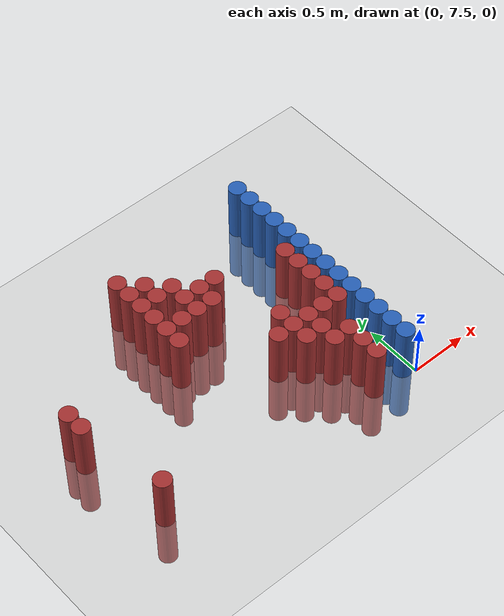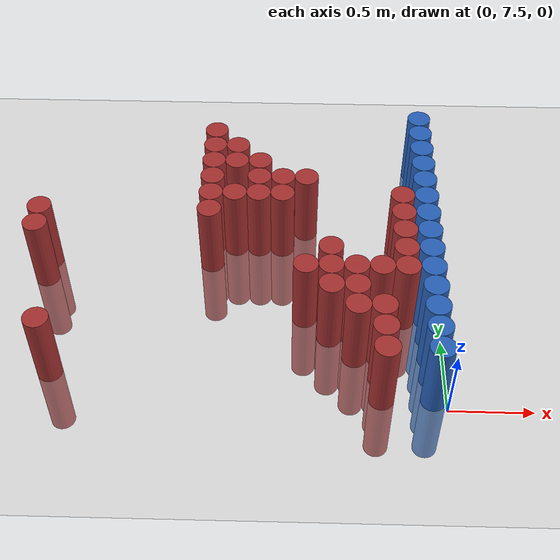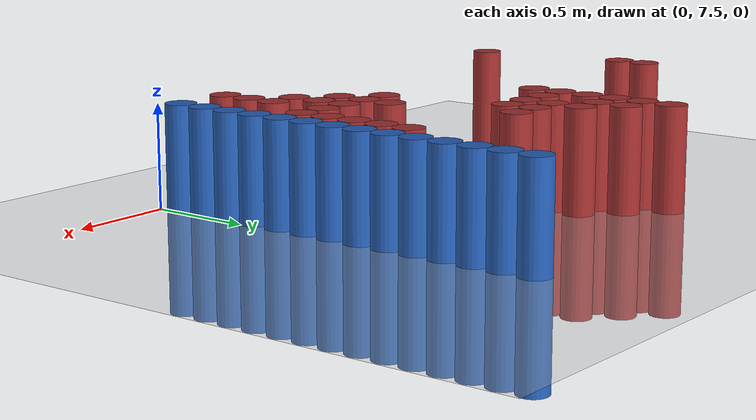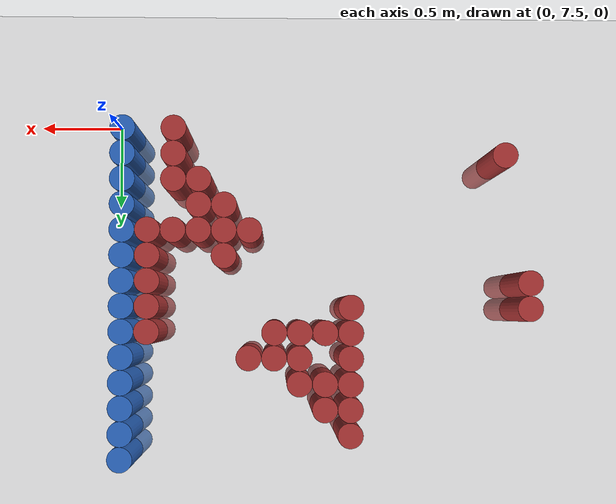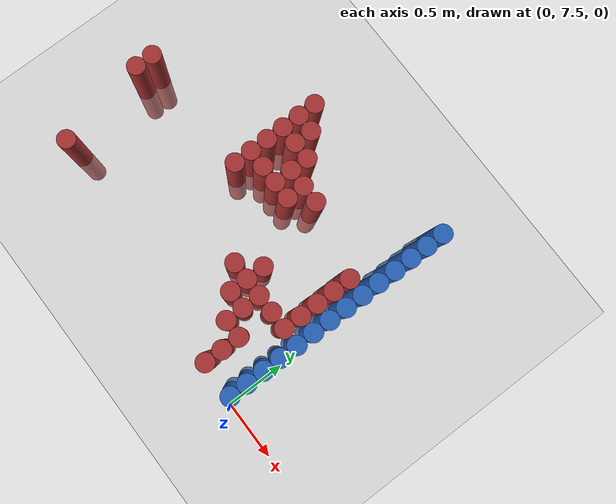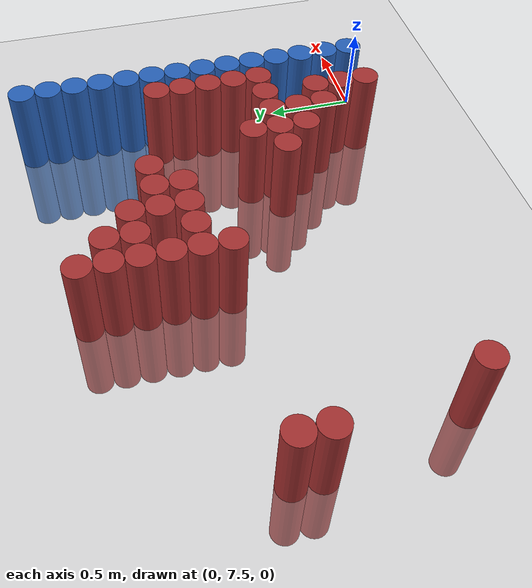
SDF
<sdf version="1.6">
 <world name="default">
  <model name="ground_plane">
   <static>1</static>
   <link name="link">
    <collision name="collision">
     <geometry><plane><normal>0 0 1</normal><size>100 100</size></plane></geometry>
     <surface><friction><ode><mu>100</mu><mu2>50</mu2></ode></friction></surface>
    </collision>
    <visual name="visual">
     <cast_shadows>0</cast_shadows>
     <geometry><plane><normal>0 0 1</normal><size>100 100</size></plane></geometry>
     <material>
      <script><uri>file://media/materials/scripts/gazebo.material</uri><name>Gazebo/Grey</name></script>
     </material>
    </visual>
   </link>
  </model>
  <model name="unit_cylinder_208">
   <static>1</static>
   <pose>-2.475000 8.475000 0.000000 0.000000 0.000000 0.000000</pose>
   <link name="link">
    <inertial>
     <mass>1</mass>
     <inertia><ixx>0.145833</ixx><ixy>0</ixy><ixz>0</ixz><iyy>0.145833</iyy><iyz>0</iyz><izz>0.125</izz></inertia>
    </inertial>
    <collision name="collision">
     <geometry><cylinder><radius>0.075000</radius><length>1</length></cylinder></geometry>
    </collision>
    <visual name="visual">
     <geometry><cylinder><radius>0.075000</radius><length>1</length></cylinder></geometry>
     <material>
      <ambient>0.648000 0.192000 0.192000 1</ambient>
      <diffuse>0.648000 0.192000 0.192000 1</diffuse>
     </material>
     <material>
      <script><name>Gazebo/Grey</name><uri>file://media/materials/scripts/gazebo.material</uri></script>
     </material>
    </visual>
   </link>
  </model>
  <model name="unit_cylinder_209">
   <static>1</static>
   <pose>-2.475000 8.625000 0.000000 0.000000 0.000000 0.000000</pose>
   <link name="link">
    <inertial>
     <mass>1</mass>
     <inertia><ixx>0.145833</ixx><ixy>0</ixy><ixz>0</ixz><iyy>0.145833</iyy><iyz>0</iyz><izz>0.125</izz></inertia>
    </inertial>
    <collision name="collision">
     <geometry><cylinder><radius>0.075000</radius><length>1</length></cylinder></geometry>
    </collision>
    <visual name="visual">
     <geometry><cylinder><radius>0.075000</radius><length>1</length></cylinder></geometry>
     <material>
      <ambient>0.648000 0.192000 0.192000 1</ambient>
      <diffuse>0.648000 0.192000 0.192000 1</diffuse>
     </material>
     <material>
      <script><name>Gazebo/Grey</name><uri>file://media/materials/scripts/gazebo.material</uri></script>
     </material>
    </visual>
   </link>
  </model>
  <model name="unit_cylinder_210">
   <static>1</static>
   <pose>-2.325000 7.725000 0.000000 0.000000 0.000000 0.000000</pose>
   <link name="link">
    <inertial>
     <mass>1</mass>
     <inertia><ixx>0.145833</ixx><ixy>0</ixy><ixz>0</ixz><iyy>0.145833</iyy><iyz>0</iyz><izz>0.125</izz></inertia>
    </inertial>
    <collision name="collision">
     <geometry><cylinder><radius>0.075000</radius><length>1</length></cylinder></geometry>
    </collision>
    <visual name="visual">
     <geometry><cylinder><radius>0.075000</radius><length>1</length></cylinder></geometry>
     <material>
      <ambient>0.648000 0.192000 0.192000 1</ambient>
      <diffuse>0.648000 0.192000 0.192000 1</diffuse>
     </material>
     <material>
      <script><name>Gazebo/Grey</name><uri>file://media/materials/scripts/gazebo.material</uri></script>
     </material>
    </visual>
   </link>
  </model>
  <model name="unit_cylinder_224">
   <static>1</static>
   <pose>-1.425000 8.625000 0.000000 0.000000 0.000000 0.000000</pose>
   <link name="link">
    <inertial>
     <mass>1</mass>
     <inertia><ixx>0.145833</ixx><ixy>0</ixy><ixz>0</ixz><iyy>0.145833</iyy><iyz>0</iyz><izz>0.125</izz></inertia>
    </inertial>
    <collision name="collision">
     <geometry><cylinder><radius>0.075000</radius><length>1</length></cylinder></geometry>
    </collision>
    <visual name="visual">
     <geometry><cylinder><radius>0.075000</radius><length>1</length></cylinder></geometry>
     <material>
      <ambient>0.648000 0.192000 0.192000 1</ambient>
      <diffuse>0.648000 0.192000 0.192000 1</diffuse>
     </material>
     <material>
      <script><name>Gazebo/Grey</name><uri>file://media/materials/scripts/gazebo.material</uri></script>
     </material>
    </visual>
   </link>
  </model>
  <model name="unit_cylinder_225">
   <static>1</static>
   <pose>-1.425000 8.775000 0.000000 0.000000 0.000000 0.000000</pose>
   <link name="link">
    <inertial>
     <mass>1</mass>
     <inertia><ixx>0.145833</ixx><ixy>0</ixy><ixz>0</ixz><iyy>0.145833</iyy><iyz>0</iyz><izz>0.125</izz></inertia>
    </inertial>
    <collision name="collision">
     <geometry><cylinder><radius>0.075000</radius><length>1</length></cylinder></geometry>
    </collision>
    <visual name="visual">
     <geometry><cylinder><radius>0.075000</radius><length>1</length></cylinder></geometry>
     <material>
      <ambient>0.648000 0.192000 0.192000 1</ambient>
      <diffuse>0.648000 0.192000 0.192000 1</diffuse>
     </material>
     <material>
      <script><name>Gazebo/Grey</name><uri>file://media/materials/scripts/gazebo.material</uri></script>
     </material>
    </visual>
   </link>
  </model>
  <model name="unit_cylinder_226">
   <static>1</static>
   <pose>-1.425000 8.925000 0.000000 0.000000 0.000000 0.000000</pose>
   <link name="link">
    <inertial>
     <mass>1</mass>
     <inertia><ixx>0.145833</ixx><ixy>0</ixy><ixz>0</ixz><iyy>0.145833</iyy><iyz>0</iyz><izz>0.125</izz></inertia>
    </inertial>
    <collision name="collision">
     <geometry><cylinder><radius>0.075000</radius><length>1</length></cylinder></geometry>
    </collision>
    <visual name="visual">
     <geometry><cylinder><radius>0.075000</radius><length>1</length></cylinder></geometry>
     <material>
      <ambient>0.648000 0.192000 0.192000 1</ambient>
      <diffuse>0.648000 0.192000 0.192000 1</diffuse>
     </material>
     <material>
      <script><name>Gazebo/Grey</name><uri>file://media/materials/scripts/gazebo.material</uri></script>
     </material>
    </visual>
   </link>
  </model>
  <model name="unit_cylinder_227">
   <static>1</static>
   <pose>-1.425000 9.075000 0.000000 0.000000 0.000000 0.000000</pose>
   <link name="link">
    <inertial>
     <mass>1</mass>
     <inertia><ixx>0.145833</ixx><ixy>0</ixy><ixz>0</ixz><iyy>0.145833</iyy><iyz>0</iyz><izz>0.125</izz></inertia>
    </inertial>
    <collision name="collision">
     <geometry><cylinder><radius>0.075000</radius><length>1</length></cylinder></geometry>
    </collision>
    <visual name="visual">
     <geometry><cylinder><radius>0.075000</radius><length>1</length></cylinder></geometry>
     <material>
      <ambient>0.648000 0.192000 0.192000 1</ambient>
      <diffuse>0.648000 0.192000 0.192000 1</diffuse>
     </material>
     <material>
      <script><name>Gazebo/Grey</name><uri>file://media/materials/scripts/gazebo.material</uri></script>
     </material>
    </visual>
   </link>
  </model>
  <model name="unit_cylinder_228">
   <static>1</static>
   <pose>-1.425000 9.225000 0.000000 0.000000 0.000000 0.000000</pose>
   <link name="link">
    <inertial>
     <mass>1</mass>
     <inertia><ixx>0.145833</ixx><ixy>0</ixy><ixz>0</ixz><iyy>0.145833</iyy><iyz>0</iyz><izz>0.125</izz></inertia>
    </inertial>
    <collision name="collision">
     <geometry><cylinder><radius>0.075000</radius><length>1</length></cylinder></geometry>
    </collision>
    <visual name="visual">
     <geometry><cylinder><radius>0.075000</radius><length>1</length></cylinder></geometry>
     <material>
      <ambient>0.648000 0.192000 0.192000 1</ambient>
      <diffuse>0.648000 0.192000 0.192000 1</diffuse>
     </material>
     <material>
      <script><name>Gazebo/Grey</name><uri>file://media/materials/scripts/gazebo.material</uri></script>
     </material>
    </visual>
   </link>
  </model>
  <model name="unit_cylinder_229">
   <static>1</static>
   <pose>-1.425000 9.375000 0.000000 0.000000 0.000000 0.000000</pose>
   <link name="link">
    <inertial>
     <mass>1</mass>
     <inertia><ixx>0.145833</ixx><ixy>0</ixy><ixz>0</ixz><iyy>0.145833</iyy><iyz>0</iyz><izz>0.125</izz></inertia>
    </inertial>
    <collision name="collision">
     <geometry><cylinder><radius>0.075000</radius><length>1</length></cylinder></geometry>
    </collision>
    <visual name="visual">
     <geometry><cylinder><radius>0.075000</radius><length>1</length></cylinder></geometry>
     <material>
      <ambient>0.648000 0.192000 0.192000 1</ambient>
      <diffuse>0.648000 0.192000 0.192000 1</diffuse>
     </material>
     <material>
      <script><name>Gazebo/Grey</name><uri>file://media/materials/scripts/gazebo.material</uri></script>
     </material>
    </visual>
   </link>
  </model>
  <model name="unit_cylinder_234">
   <static>1</static>
   <pose>-1.275000 8.775000 0.000000 0.000000 0.000000 0.000000</pose>
   <link name="link">
    <inertial>
     <mass>1</mass>
     <inertia><ixx>0.145833</ixx><ixy>0</ixy><ixz>0</ixz><iyy>0.145833</iyy><iyz>0</iyz><izz>0.125</izz></inertia>
    </inertial>
    <collision name="collision">
     <geometry><cylinder><radius>0.075000</radius><length>1</length></cylinder></geometry>
    </collision>
    <visual name="visual">
     <geometry><cylinder><radius>0.075000</radius><length>1</length></cylinder></geometry>
     <material>
      <ambient>0.648000 0.192000 0.192000 1</ambient>
      <diffuse>0.648000 0.192000 0.192000 1</diffuse>
     </material>
     <material>
      <script><name>Gazebo/Grey</name><uri>file://media/materials/scripts/gazebo.material</uri></script>
     </material>
    </visual>
   </link>
  </model>
  <model name="unit_cylinder_235">
   <static>1</static>
   <pose>-1.275000 9.075000 0.000000 0.000000 0.000000 0.000000</pose>
   <link name="link">
    <inertial>
     <mass>1</mass>
     <inertia><ixx>0.145833</ixx><ixy>0</ixy><ixz>0</ixz><iyy>0.145833</iyy><iyz>0</iyz><izz>0.125</izz></inertia>
    </inertial>
    <collision name="collision">
     <geometry><cylinder><radius>0.075000</radius><length>1</length></cylinder></geometry>
    </collision>
    <visual name="visual">
     <geometry><cylinder><radius>0.075000</radius><length>1</length></cylinder></geometry>
     <material>
      <ambient>0.648000 0.192000 0.192000 1</ambient>
      <diffuse>0.648000 0.192000 0.192000 1</diffuse>
     </material>
     <material>
      <script><name>Gazebo/Grey</name><uri>file://media/materials/scripts/gazebo.material</uri></script>
     </material>
    </visual>
   </link>
  </model>
  <model name="unit_cylinder_236">
   <static>1</static>
   <pose>-1.275000 9.225000 0.000000 0.000000 0.000000 0.000000</pose>
   <link name="link">
    <inertial>
     <mass>1</mass>
     <inertia><ixx>0.145833</ixx><ixy>0</ixy><ixz>0</ixz><iyy>0.145833</iyy><iyz>0</iyz><izz>0.125</izz></inertia>
    </inertial>
    <collision name="collision">
     <geometry><cylinder><radius>0.075000</radius><length>1</length></cylinder></geometry>
    </collision>
    <visual name="visual">
     <geometry><cylinder><radius>0.075000</radius><length>1</length></cylinder></geometry>
     <material>
      <ambient>0.648000 0.192000 0.192000 1</ambient>
      <diffuse>0.648000 0.192000 0.192000 1</diffuse>
     </material>
     <material>
      <script><name>Gazebo/Grey</name><uri>file://media/materials/scripts/gazebo.material</uri></script>
     </material>
    </visual>
   </link>
  </model>
  <model name="unit_cylinder_243">
   <static>1</static>
   <pose>-1.125000 8.775000 0.000000 0.000000 0.000000 0.000000</pose>
   <link name="link">
    <inertial>
     <mass>1</mass>
     <inertia><ixx>0.145833</ixx><ixy>0</ixy><ixz>0</ixz><iyy>0.145833</iyy><iyz>0</iyz><izz>0.125</izz></inertia>
    </inertial>
    <collision name="collision">
     <geometry><cylinder><radius>0.075000</radius><length>1</length></cylinder></geometry>
    </collision>
    <visual name="visual">
     <geometry><cylinder><radius>0.075000</radius><length>1</length></cylinder></geometry>
     <material>
      <ambient>0.648000 0.192000 0.192000 1</ambient>
      <diffuse>0.648000 0.192000 0.192000 1</diffuse>
     </material>
     <material>
      <script><name>Gazebo/Grey</name><uri>file://media/materials/scripts/gazebo.material</uri></script>
     </material>
    </visual>
   </link>
  </model>
  <model name="unit_cylinder_244">
   <static>1</static>
   <pose>-1.125000 8.925000 0.000000 0.000000 0.000000 0.000000</pose>
   <link name="link">
    <inertial>
     <mass>1</mass>
     <inertia><ixx>0.145833</ixx><ixy>0</ixy><ixz>0</ixz><iyy>0.145833</iyy><iyz>0</iyz><izz>0.125</izz></inertia>
    </inertial>
    <collision name="collision">
     <geometry><cylinder><radius>0.075000</radius><length>1</length></cylinder></geometry>
    </collision>
    <visual name="visual">
     <geometry><cylinder><radius>0.075000</radius><length>1</length></cylinder></geometry>
     <material>
      <ambient>0.648000 0.192000 0.192000 1</ambient>
      <diffuse>0.648000 0.192000 0.192000 1</diffuse>
     </material>
     <material>
      <script><name>Gazebo/Grey</name><uri>file://media/materials/scripts/gazebo.material</uri></script>
     </material>
    </visual>
   </link>
  </model>
  <model name="unit_cylinder_245">
   <static>1</static>
   <pose>-1.125000 9.075000 0.000000 0.000000 0.000000 0.000000</pose>
   <link name="link">
    <inertial>
     <mass>1</mass>
     <inertia><ixx>0.145833</ixx><ixy>0</ixy><ixz>0</ixz><iyy>0.145833</iyy><iyz>0</iyz><izz>0.125</izz></inertia>
    </inertial>
    <collision name="collision">
     <geometry><cylinder><radius>0.075000</radius><length>1</length></cylinder></geometry>
    </collision>
    <visual name="visual">
     <geometry><cylinder><radius>0.075000</radius><length>1</length></cylinder></geometry>
     <material>
      <ambient>0.648000 0.192000 0.192000 1</ambient>
      <diffuse>0.648000 0.192000 0.192000 1</diffuse>
     </material>
     <material>
      <script><name>Gazebo/Grey</name><uri>file://media/materials/scripts/gazebo.material</uri></script>
     </material>
    </visual>
   </link>
  </model>
  <model name="unit_cylinder_253">
   <static>1</static>
   <pose>-0.975000 8.775000 0.000000 0.000000 0.000000 0.000000</pose>
   <link name="link">
    <inertial>
     <mass>1</mass>
     <inertia><ixx>0.145833</ixx><ixy>0</ixy><ixz>0</ixz><iyy>0.145833</iyy><iyz>0</iyz><izz>0.125</izz></inertia>
    </inertial>
    <collision name="collision">
     <geometry><cylinder><radius>0.075000</radius><length>1</length></cylinder></geometry>
    </collision>
    <visual name="visual">
     <geometry><cylinder><radius>0.075000</radius><length>1</length></cylinder></geometry>
     <material>
      <ambient>0.648000 0.192000 0.192000 1</ambient>
      <diffuse>0.648000 0.192000 0.192000 1</diffuse>
     </material>
     <material>
      <script><name>Gazebo/Grey</name><uri>file://media/materials/scripts/gazebo.material</uri></script>
     </material>
    </visual>
   </link>
  </model>
  <model name="unit_cylinder_254">
   <static>1</static>
   <pose>-0.975000 8.925000 0.000000 0.000000 0.000000 0.000000</pose>
   <link name="link">
    <inertial>
     <mass>1</mass>
     <inertia><ixx>0.145833</ixx><ixy>0</ixy><ixz>0</ixz><iyy>0.145833</iyy><iyz>0</iyz><izz>0.125</izz></inertia>
    </inertial>
    <collision name="collision">
     <geometry><cylinder><radius>0.075000</radius><length>1</length></cylinder></geometry>
    </collision>
    <visual name="visual">
     <geometry><cylinder><radius>0.075000</radius><length>1</length></cylinder></geometry>
     <material>
      <ambient>0.648000 0.192000 0.192000 1</ambient>
      <diffuse>0.648000 0.192000 0.192000 1</diffuse>
     </material>
     <material>
      <script><name>Gazebo/Grey</name><uri>file://media/materials/scripts/gazebo.material</uri></script>
     </material>
    </visual>
   </link>
  </model>
  <model name="unit_cylinder_262">
   <static>1</static>
   <pose>-0.825000 8.175000 0.000000 0.000000 0.000000 0.000000</pose>
   <link name="link">
    <inertial>
     <mass>1</mass>
     <inertia><ixx>0.145833</ixx><ixy>0</ixy><ixz>0</ixz><iyy>0.145833</iyy><iyz>0</iyz><izz>0.125</izz></inertia>
    </inertial>
    <collision name="collision">
     <geometry><cylinder><radius>0.075000</radius><length>1</length></cylinder></geometry>
    </collision>
    <visual name="visual">
     <geometry><cylinder><radius>0.075000</radius><length>1</length></cylinder></geometry>
     <material>
      <ambient>0.648000 0.192000 0.192000 1</ambient>
      <diffuse>0.648000 0.192000 0.192000 1</diffuse>
     </material>
     <material>
      <script><name>Gazebo/Grey</name><uri>file://media/materials/scripts/gazebo.material</uri></script>
     </material>
    </visual>
   </link>
  </model>
  <model name="unit_cylinder_263">
   <static>1</static>
   <pose>-0.825000 8.925000 0.000000 0.000000 0.000000 0.000000</pose>
   <link name="link">
    <inertial>
     <mass>1</mass>
     <inertia><ixx>0.145833</ixx><ixy>0</ixy><ixz>0</ixz><iyy>0.145833</iyy><iyz>0</iyz><izz>0.125</izz></inertia>
    </inertial>
    <collision name="collision">
     <geometry><cylinder><radius>0.075000</radius><length>1</length></cylinder></geometry>
    </collision>
    <visual name="visual">
     <geometry><cylinder><radius>0.075000</radius><length>1</length></cylinder></geometry>
     <material>
      <ambient>0.648000 0.192000 0.192000 1</ambient>
      <diffuse>0.648000 0.192000 0.192000 1</diffuse>
     </material>
     <material>
      <script><name>Gazebo/Grey</name><uri>file://media/materials/scripts/gazebo.material</uri></script>
     </material>
    </visual>
   </link>
  </model>
  <model name="unit_cylinder_271">
   <static>1</static>
   <pose>-0.675000 8.025000 0.000000 0.000000 0.000000 0.000000</pose>
   <link name="link">
    <inertial>
     <mass>1</mass>
     <inertia><ixx>0.145833</ixx><ixy>0</ixy><ixz>0</ixz><iyy>0.145833</iyy><iyz>0</iyz><izz>0.125</izz></inertia>
    </inertial>
    <collision name="collision">
     <geometry><cylinder><radius>0.075000</radius><length>1</length></cylinder></geometry>
    </collision>
    <visual name="visual">
     <geometry><cylinder><radius>0.075000</radius><length>1</length></cylinder></geometry>
     <material>
      <ambient>0.648000 0.192000 0.192000 1</ambient>
      <diffuse>0.648000 0.192000 0.192000 1</diffuse>
     </material>
     <material>
      <script><name>Gazebo/Grey</name><uri>file://media/materials/scripts/gazebo.material</uri></script>
     </material>
    </visual>
   </link>
  </model>
  <model name="unit_cylinder_272">
   <static>1</static>
   <pose>-0.675000 8.175000 0.000000 0.000000 0.000000 0.000000</pose>
   <link name="link">
    <inertial>
     <mass>1</mass>
     <inertia><ixx>0.145833</ixx><ixy>0</ixy><ixz>0</ixz><iyy>0.145833</iyy><iyz>0</iyz><izz>0.125</izz></inertia>
    </inertial>
    <collision name="collision">
     <geometry><cylinder><radius>0.075000</radius><length>1</length></cylinder></geometry>
    </collision>
    <visual name="visual">
     <geometry><cylinder><radius>0.075000</radius><length>1</length></cylinder></geometry>
     <material>
      <ambient>0.648000 0.192000 0.192000 1</ambient>
      <diffuse>0.648000 0.192000 0.192000 1</diffuse>
     </material>
     <material>
      <script><name>Gazebo/Grey</name><uri>file://media/materials/scripts/gazebo.material</uri></script>
     </material>
    </visual>
   </link>
  </model>
  <model name="unit_cylinder_273">
   <static>1</static>
   <pose>-0.675000 8.325000 0.000000 0.000000 0.000000 0.000000</pose>
   <link name="link">
    <inertial>
     <mass>1</mass>
     <inertia><ixx>0.145833</ixx><ixy>0</ixy><ixz>0</ixz><iyy>0.145833</iyy><iyz>0</iyz><izz>0.125</izz></inertia>
    </inertial>
    <collision name="collision">
     <geometry><cylinder><radius>0.075000</radius><length>1</length></cylinder></geometry>
    </collision>
    <visual name="visual">
     <geometry><cylinder><radius>0.075000</radius><length>1</length></cylinder></geometry>
     <material>
      <ambient>0.648000 0.192000 0.192000 1</ambient>
      <diffuse>0.648000 0.192000 0.192000 1</diffuse>
     </material>
     <material>
      <script><name>Gazebo/Grey</name><uri>file://media/materials/scripts/gazebo.material</uri></script>
     </material>
    </visual>
   </link>
  </model>
  <model name="unit_cylinder_283">
   <static>1</static>
   <pose>-0.525000 7.875000 0.000000 0.000000 0.000000 0.000000</pose>
   <link name="link">
    <inertial>
     <mass>1</mass>
     <inertia><ixx>0.145833</ixx><ixy>0</ixy><ixz>0</ixz><iyy>0.145833</iyy><iyz>0</iyz><izz>0.125</izz></inertia>
    </inertial>
    <collision name="collision">
     <geometry><cylinder><radius>0.075000</radius><length>1</length></cylinder></geometry>
    </collision>
    <visual name="visual">
     <geometry><cylinder><radius>0.075000</radius><length>1</length></cylinder></geometry>
     <material>
      <ambient>0.648000 0.192000 0.192000 1</ambient>
      <diffuse>0.648000 0.192000 0.192000 1</diffuse>
     </material>
     <material>
      <script><name>Gazebo/Grey</name><uri>file://media/materials/scripts/gazebo.material</uri></script>
     </material>
    </visual>
   </link>
  </model>
  <model name="unit_cylinder_284">
   <static>1</static>
   <pose>-0.525000 8.025000 0.000000 0.000000 0.000000 0.000000</pose>
   <link name="link">
    <inertial>
     <mass>1</mass>
     <inertia><ixx>0.145833</ixx><ixy>0</ixy><ixz>0</ixz><iyy>0.145833</iyy><iyz>0</iyz><izz>0.125</izz></inertia>
    </inertial>
    <collision name="collision">
     <geometry><cylinder><radius>0.075000</radius><length>1</length></cylinder></geometry>
    </collision>
    <visual name="visual">
     <geometry><cylinder><radius>0.075000</radius><length>1</length></cylinder></geometry>
     <material>
      <ambient>0.648000 0.192000 0.192000 1</ambient>
      <diffuse>0.648000 0.192000 0.192000 1</diffuse>
     </material>
     <material>
      <script><name>Gazebo/Grey</name><uri>file://media/materials/scripts/gazebo.material</uri></script>
     </material>
    </visual>
   </link>
  </model>
  <model name="unit_cylinder_285">
   <static>1</static>
   <pose>-0.525000 8.175000 0.000000 0.000000 0.000000 0.000000</pose>
   <link name="link">
    <inertial>
     <mass>1</mass>
     <inertia><ixx>0.145833</ixx><ixy>0</ixy><ixz>0</ixz><iyy>0.145833</iyy><iyz>0</iyz><izz>0.125</izz></inertia>
    </inertial>
    <collision name="collision">
     <geometry><cylinder><radius>0.075000</radius><length>1</length></cylinder></geometry>
    </collision>
    <visual name="visual">
     <geometry><cylinder><radius>0.075000</radius><length>1</length></cylinder></geometry>
     <material>
      <ambient>0.648000 0.192000 0.192000 1</ambient>
      <diffuse>0.648000 0.192000 0.192000 1</diffuse>
     </material>
     <material>
      <script><name>Gazebo/Grey</name><uri>file://media/materials/scripts/gazebo.material</uri></script>
     </material>
    </visual>
   </link>
  </model>
  <model name="unit_cylinder_296">
   <static>1</static>
   <pose>-0.375000 7.575000 0.000000 0.000000 0.000000 0.000000</pose>
   <link name="link">
    <inertial>
     <mass>1</mass>
     <inertia><ixx>0.145833</ixx><ixy>0</ixy><ixz>0</ixz><iyy>0.145833</iyy><iyz>0</iyz><izz>0.125</izz></inertia>
    </inertial>
    <collision name="collision">
     <geometry><cylinder><radius>0.075000</radius><length>1</length></cylinder></geometry>
    </collision>
    <visual name="visual">
     <geometry><cylinder><radius>0.075000</radius><length>1</length></cylinder></geometry>
     <material>
      <ambient>0.648000 0.192000 0.192000 1</ambient>
      <diffuse>0.648000 0.192000 0.192000 1</diffuse>
     </material>
     <material>
      <script><name>Gazebo/Grey</name><uri>file://media/materials/scripts/gazebo.material</uri></script>
     </material>
    </visual>
   </link>
  </model>
  <model name="unit_cylinder_297">
   <static>1</static>
   <pose>-0.375000 7.725000 0.000000 0.000000 0.000000 0.000000</pose>
   <link name="link">
    <inertial>
     <mass>1</mass>
     <inertia><ixx>0.145833</ixx><ixy>0</ixy><ixz>0</ixz><iyy>0.145833</iyy><iyz>0</iyz><izz>0.125</izz></inertia>
    </inertial>
    <collision name="collision">
     <geometry><cylinder><radius>0.075000</radius><length>1</length></cylinder></geometry>
    </collision>
    <visual name="visual">
     <geometry><cylinder><radius>0.075000</radius><length>1</length></cylinder></geometry>
     <material>
      <ambient>0.648000 0.192000 0.192000 1</ambient>
      <diffuse>0.648000 0.192000 0.192000 1</diffuse>
     </material>
     <material>
      <script><name>Gazebo/Grey</name><uri>file://media/materials/scripts/gazebo.material</uri></script>
     </material>
    </visual>
   </link>
  </model>
  <model name="unit_cylinder_298">
   <static>1</static>
   <pose>-0.375000 7.875000 0.000000 0.000000 0.000000 0.000000</pose>
   <link name="link">
    <inertial>
     <mass>1</mass>
     <inertia><ixx>0.145833</ixx><ixy>0</ixy><ixz>0</ixz><iyy>0.145833</iyy><iyz>0</iyz><izz>0.125</izz></inertia>
    </inertial>
    <collision name="collision">
     <geometry><cylinder><radius>0.075000</radius><length>1</length></cylinder></geometry>
    </collision>
    <visual name="visual">
     <geometry><cylinder><radius>0.075000</radius><length>1</length></cylinder></geometry>
     <material>
      <ambient>0.648000 0.192000 0.192000 1</ambient>
      <diffuse>0.648000 0.192000 0.192000 1</diffuse>
     </material>
     <material>
      <script><name>Gazebo/Grey</name><uri>file://media/materials/scripts/gazebo.material</uri></script>
     </material>
    </visual>
   </link>
  </model>
  <model name="unit_cylinder_299">
   <static>1</static>
   <pose>-0.375000 8.175000 0.000000 0.000000 0.000000 0.000000</pose>
   <link name="link">
    <inertial>
     <mass>1</mass>
     <inertia><ixx>0.145833</ixx><ixy>0</ixy><ixz>0</ixz><iyy>0.145833</iyy><iyz>0</iyz><izz>0.125</izz></inertia>
    </inertial>
    <collision name="collision">
     <geometry><cylinder><radius>0.075000</radius><length>1</length></cylinder></geometry>
    </collision>
    <visual name="visual">
     <geometry><cylinder><radius>0.075000</radius><length>1</length></cylinder></geometry>
     <material>
      <ambient>0.648000 0.192000 0.192000 1</ambient>
      <diffuse>0.648000 0.192000 0.192000 1</diffuse>
     </material>
     <material>
      <script><name>Gazebo/Grey</name><uri>file://media/materials/scripts/gazebo.material</uri></script>
     </material>
    </visual>
   </link>
  </model>
  <model name="unit_cylinder_301">
   <static>1</static>
   <pose>-0.225000 8.175000 0.000000 0.000000 0.000000 0.000000</pose>
   <link name="link">
    <inertial>
     <mass>1</mass>
     <inertia><ixx>0.145833</ixx><ixy>0</ixy><ixz>0</ixz><iyy>0.145833</iyy><iyz>0</iyz><izz>0.125</izz></inertia>
    </inertial>
    <collision name="collision">
     <geometry><cylinder><radius>0.075000</radius><length>1</length></cylinder></geometry>
    </collision>
    <visual name="visual">
     <geometry><cylinder><radius>0.075000</radius><length>1</length></cylinder></geometry>
     <material>
      <ambient>0.648000 0.192000 0.192000 1</ambient>
      <diffuse>0.648000 0.192000 0.192000 1</diffuse>
     </material>
     <material>
      <script><name>Gazebo/Grey</name><uri>file://media/materials/scripts/gazebo.material</uri></script>
     </material>
    </visual>
   </link>
  </model>
  <model name="unit_cylinder_302">
   <static>1</static>
   <pose>-0.225000 8.325000 0.000000 0.000000 0.000000 0.000000</pose>
   <link name="link">
    <inertial>
     <mass>1</mass>
     <inertia><ixx>0.145833</ixx><ixy>0</ixy><ixz>0</ixz><iyy>0.145833</iyy><iyz>0</iyz><izz>0.125</izz></inertia>
    </inertial>
    <collision name="collision">
     <geometry><cylinder><radius>0.075000</radius><length>1</length></cylinder></geometry>
    </collision>
    <visual name="visual">
     <geometry><cylinder><radius>0.075000</radius><length>1</length></cylinder></geometry>
     <material>
      <ambient>0.648000 0.192000 0.192000 1</ambient>
      <diffuse>0.648000 0.192000 0.192000 1</diffuse>
     </material>
     <material>
      <script><name>Gazebo/Grey</name><uri>file://media/materials/scripts/gazebo.material</uri></script>
     </material>
    </visual>
   </link>
  </model>
  <model name="unit_cylinder_303">
   <static>1</static>
   <pose>-0.225000 8.475000 0.000000 0.000000 0.000000 0.000000</pose>
   <link name="link">
    <inertial>
     <mass>1</mass>
     <inertia><ixx>0.145833</ixx><ixy>0</ixy><ixz>0</ixz><iyy>0.145833</iyy><iyz>0</iyz><izz>0.125</izz></inertia>
    </inertial>
    <collision name="collision">
     <geometry><cylinder><radius>0.075000</radius><length>1</length></cylinder></geometry>
    </collision>
    <visual name="visual">
     <geometry><cylinder><radius>0.075000</radius><length>1</length></cylinder></geometry>
     <material>
      <ambient>0.648000 0.192000 0.192000 1</ambient>
      <diffuse>0.648000 0.192000 0.192000 1</diffuse>
     </material>
     <material>
      <script><name>Gazebo/Grey</name><uri>file://media/materials/scripts/gazebo.material</uri></script>
     </material>
    </visual>
   </link>
  </model>
  <model name="unit_cylinder_304">
   <static>1</static>
   <pose>-0.225000 8.625000 0.000000 0.000000 0.000000 0.000000</pose>
   <link name="link">
    <inertial>
     <mass>1</mass>
     <inertia><ixx>0.145833</ixx><ixy>0</ixy><ixz>0</ixz><iyy>0.145833</iyy><iyz>0</iyz><izz>0.125</izz></inertia>
    </inertial>
    <collision name="collision">
     <geometry><cylinder><radius>0.075000</radius><length>1</length></cylinder></geometry>
    </collision>
    <visual name="visual">
     <geometry><cylinder><radius>0.075000</radius><length>1</length></cylinder></geometry>
     <material>
      <ambient>0.648000 0.192000 0.192000 1</ambient>
      <diffuse>0.648000 0.192000 0.192000 1</diffuse>
     </material>
     <material>
      <script><name>Gazebo/Grey</name><uri>file://media/materials/scripts/gazebo.material</uri></script>
     </material>
    </visual>
   </link>
  </model>
  <model name="unit_cylinder_305">
   <static>1</static>
   <pose>-0.225000 8.775000 0.000000 0.000000 0.000000 0.000000</pose>
   <link name="link">
    <inertial>
     <mass>1</mass>
     <inertia><ixx>0.145833</ixx><ixy>0</ixy><ixz>0</ixz><iyy>0.145833</iyy><iyz>0</iyz><izz>0.125</izz></inertia>
    </inertial>
    <collision name="collision">
     <geometry><cylinder><radius>0.075000</radius><length>1</length></cylinder></geometry>
    </collision>
    <visual name="visual">
     <geometry><cylinder><radius>0.075000</radius><length>1</length></cylinder></geometry>
     <material>
      <ambient>0.648000 0.192000 0.192000 1</ambient>
      <diffuse>0.648000 0.192000 0.192000 1</diffuse>
     </material>
     <material>
      <script><name>Gazebo/Grey</name><uri>file://media/materials/scripts/gazebo.material</uri></script>
     </material>
    </visual>
   </link>
  </model>
  <model name="unit_cylinder_322">
   <static>1</static>
   <pose>-0.075000 7.575000 0.000000 0.000000 0.000000 0.000000</pose>
   <link name="link">
    <inertial>
     <mass>1</mass>
     <inertia><ixx>0.145833</ixx><ixy>0</ixy><ixz>0</ixz><iyy>0.145833</iyy><iyz>0</iyz><izz>0.125</izz></inertia>
    </inertial>
    <collision name="collision">
     <geometry><cylinder><radius>0.075000</radius><length>1</length></cylinder></geometry>
    </collision>
    <visual name="visual">
     <geometry><cylinder><radius>0.075000</radius><length>1</length></cylinder></geometry>
     <material>
      <ambient>0.152000 0.379000 0.720000 1</ambient>
      <diffuse>0.152000 0.379000 0.720000 1</diffuse>
     </material>
     <material>
      <script><name>Gazebo/Grey</name><uri>file://media/materials/scripts/gazebo.material</uri></script>
     </material>
    </visual>
   </link>
  </model>
  <model name="unit_cylinder_323">
   <static>1</static>
   <pose>-0.075000 7.725000 0.000000 0.000000 0.000000 0.000000</pose>
   <link name="link">
    <inertial>
     <mass>1</mass>
     <inertia><ixx>0.145833</ixx><ixy>0</ixy><ixz>0</ixz><iyy>0.145833</iyy><iyz>0</iyz><izz>0.125</izz></inertia>
    </inertial>
    <collision name="collision">
     <geometry><cylinder><radius>0.075000</radius><length>1</length></cylinder></geometry>
    </collision>
    <visual name="visual">
     <geometry><cylinder><radius>0.075000</radius><length>1</length></cylinder></geometry>
     <material>
      <ambient>0.152000 0.379000 0.720000 1</ambient>
      <diffuse>0.152000 0.379000 0.720000 1</diffuse>
     </material>
     <material>
      <script><name>Gazebo/Grey</name><uri>file://media/materials/scripts/gazebo.material</uri></script>
     </material>
    </visual>
   </link>
  </model>
  <model name="unit_cylinder_324">
   <static>1</static>
   <pose>-0.075000 7.875000 0.000000 0.000000 0.000000 0.000000</pose>
   <link name="link">
    <inertial>
     <mass>1</mass>
     <inertia><ixx>0.145833</ixx><ixy>0</ixy><ixz>0</ixz><iyy>0.145833</iyy><iyz>0</iyz><izz>0.125</izz></inertia>
    </inertial>
    <collision name="collision">
     <geometry><cylinder><radius>0.075000</radius><length>1</length></cylinder></geometry>
    </collision>
    <visual name="visual">
     <geometry><cylinder><radius>0.075000</radius><length>1</length></cylinder></geometry>
     <material>
      <ambient>0.152000 0.379000 0.720000 1</ambient>
      <diffuse>0.152000 0.379000 0.720000 1</diffuse>
     </material>
     <material>
      <script><name>Gazebo/Grey</name><uri>file://media/materials/scripts/gazebo.material</uri></script>
     </material>
    </visual>
   </link>
  </model>
  <model name="unit_cylinder_325">
   <static>1</static>
   <pose>-0.075000 8.025000 0.000000 0.000000 0.000000 0.000000</pose>
   <link name="link">
    <inertial>
     <mass>1</mass>
     <inertia><ixx>0.145833</ixx><ixy>0</ixy><ixz>0</ixz><iyy>0.145833</iyy><iyz>0</iyz><izz>0.125</izz></inertia>
    </inertial>
    <collision name="collision">
     <geometry><cylinder><radius>0.075000</radius><length>1</length></cylinder></geometry>
    </collision>
    <visual name="visual">
     <geometry><cylinder><radius>0.075000</radius><length>1</length></cylinder></geometry>
     <material>
      <ambient>0.152000 0.379000 0.720000 1</ambient>
      <diffuse>0.152000 0.379000 0.720000 1</diffuse>
     </material>
     <material>
      <script><name>Gazebo/Grey</name><uri>file://media/materials/scripts/gazebo.material</uri></script>
     </material>
    </visual>
   </link>
  </model>
  <model name="unit_cylinder_326">
   <static>1</static>
   <pose>-0.075000 8.175000 0.000000 0.000000 0.000000 0.000000</pose>
   <link name="link">
    <inertial>
     <mass>1</mass>
     <inertia><ixx>0.145833</ixx><ixy>0</ixy><ixz>0</ixz><iyy>0.145833</iyy><iyz>0</iyz><izz>0.125</izz></inertia>
    </inertial>
    <collision name="collision">
     <geometry><cylinder><radius>0.075000</radius><length>1</length></cylinder></geometry>
    </collision>
    <visual name="visual">
     <geometry><cylinder><radius>0.075000</radius><length>1</length></cylinder></geometry>
     <material>
      <ambient>0.152000 0.379000 0.720000 1</ambient>
      <diffuse>0.152000 0.379000 0.720000 1</diffuse>
     </material>
     <material>
      <script><name>Gazebo/Grey</name><uri>file://media/materials/scripts/gazebo.material</uri></script>
     </material>
    </visual>
   </link>
  </model>
  <model name="unit_cylinder_327">
   <static>1</static>
   <pose>-0.075000 8.325000 0.000000 0.000000 0.000000 0.000000</pose>
   <link name="link">
    <inertial>
     <mass>1</mass>
     <inertia><ixx>0.145833</ixx><ixy>0</ixy><ixz>0</ixz><iyy>0.145833</iyy><iyz>0</iyz><izz>0.125</izz></inertia>
    </inertial>
    <collision name="collision">
     <geometry><cylinder><radius>0.075000</radius><length>1</length></cylinder></geometry>
    </collision>
    <visual name="visual">
     <geometry><cylinder><radius>0.075000</radius><length>1</length></cylinder></geometry>
     <material>
      <ambient>0.152000 0.379000 0.720000 1</ambient>
      <diffuse>0.152000 0.379000 0.720000 1</diffuse>
     </material>
     <material>
      <script><name>Gazebo/Grey</name><uri>file://media/materials/scripts/gazebo.material</uri></script>
     </material>
    </visual>
   </link>
  </model>
  <model name="unit_cylinder_328">
   <static>1</static>
   <pose>-0.075000 8.475000 0.000000 0.000000 0.000000 0.000000</pose>
   <link name="link">
    <inertial>
     <mass>1</mass>
     <inertia><ixx>0.145833</ixx><ixy>0</ixy><ixz>0</ixz><iyy>0.145833</iyy><iyz>0</iyz><izz>0.125</izz></inertia>
    </inertial>
    <collision name="collision">
     <geometry><cylinder><radius>0.075000</radius><length>1</length></cylinder></geometry>
    </collision>
    <visual name="visual">
     <geometry><cylinder><radius>0.075000</radius><length>1</length></cylinder></geometry>
     <material>
      <ambient>0.152000 0.379000 0.720000 1</ambient>
      <diffuse>0.152000 0.379000 0.720000 1</diffuse>
     </material>
     <material>
      <script><name>Gazebo/Grey</name><uri>file://media/materials/scripts/gazebo.material</uri></script>
     </material>
    </visual>
   </link>
  </model>
  <model name="unit_cylinder_329">
   <static>1</static>
   <pose>-0.075000 8.625000 0.000000 0.000000 0.000000 0.000000</pose>
   <link name="link">
    <inertial>
     <mass>1</mass>
     <inertia><ixx>0.145833</ixx><ixy>0</ixy><ixz>0</ixz><iyy>0.145833</iyy><iyz>0</iyz><izz>0.125</izz></inertia>
    </inertial>
    <collision name="collision">
     <geometry><cylinder><radius>0.075000</radius><length>1</length></cylinder></geometry>
    </collision>
    <visual name="visual">
     <geometry><cylinder><radius>0.075000</radius><length>1</length></cylinder></geometry>
     <material>
      <ambient>0.152000 0.379000 0.720000 1</ambient>
      <diffuse>0.152000 0.379000 0.720000 1</diffuse>
     </material>
     <material>
      <script><name>Gazebo/Grey</name><uri>file://media/materials/scripts/gazebo.material</uri></script>
     </material>
    </visual>
   </link>
  </model>
  <model name="unit_cylinder_330">
   <static>1</static>
   <pose>-0.075000 8.775000 0.000000 0.000000 0.000000 0.000000</pose>
   <link name="link">
    <inertial>
     <mass>1</mass>
     <inertia><ixx>0.145833</ixx><ixy>0</ixy><ixz>0</ixz><iyy>0.145833</iyy><iyz>0</iyz><izz>0.125</izz></inertia>
    </inertial>
    <collision name="collision">
     <geometry><cylinder><radius>0.075000</radius><length>1</length></cylinder></geometry>
    </collision>
    <visual name="visual">
     <geometry><cylinder><radius>0.075000</radius><length>1</length></cylinder></geometry>
     <material>
      <ambient>0.152000 0.379000 0.720000 1</ambient>
      <diffuse>0.152000 0.379000 0.720000 1</diffuse>
     </material>
     <material>
      <script><name>Gazebo/Grey</name><uri>file://media/materials/scripts/gazebo.material</uri></script>
     </material>
    </visual>
   </link>
  </model>
  <model name="unit_cylinder_331">
   <static>1</static>
   <pose>-0.075000 8.925000 0.000000 0.000000 0.000000 0.000000</pose>
   <link name="link">
    <inertial>
     <mass>1</mass>
     <inertia><ixx>0.145833</ixx><ixy>0</ixy><ixz>0</ixz><iyy>0.145833</iyy><iyz>0</iyz><izz>0.125</izz></inertia>
    </inertial>
    <collision name="collision">
     <geometry><cylinder><radius>0.075000</radius><length>1</length></cylinder></geometry>
    </collision>
    <visual name="visual">
     <geometry><cylinder><radius>0.075000</radius><length>1</length></cylinder></geometry>
     <material>
      <ambient>0.152000 0.379000 0.720000 1</ambient>
      <diffuse>0.152000 0.379000 0.720000 1</diffuse>
     </material>
     <material>
      <script><name>Gazebo/Grey</name><uri>file://media/materials/scripts/gazebo.material</uri></script>
     </material>
    </visual>
   </link>
  </model>
  <model name="unit_cylinder_332">
   <static>1</static>
   <pose>-0.075000 9.075000 0.000000 0.000000 0.000000 0.000000</pose>
   <link name="link">
    <inertial>
     <mass>1</mass>
     <inertia><ixx>0.145833</ixx><ixy>0</ixy><ixz>0</ixz><iyy>0.145833</iyy><iyz>0</iyz><izz>0.125</izz></inertia>
    </inertial>
    <collision name="collision">
     <geometry><cylinder><radius>0.075000</radius><length>1</length></cylinder></geometry>
    </collision>
    <visual name="visual">
     <geometry><cylinder><radius>0.075000</radius><length>1</length></cylinder></geometry>
     <material>
      <ambient>0.152000 0.379000 0.720000 1</ambient>
      <diffuse>0.152000 0.379000 0.720000 1</diffuse>
     </material>
     <material>
      <script><name>Gazebo/Grey</name><uri>file://media/materials/scripts/gazebo.material</uri></script>
     </material>
    </visual>
   </link>
  </model>
  <model name="unit_cylinder_333">
   <static>1</static>
   <pose>-0.075000 9.225000 0.000000 0.000000 0.000000 0.000000</pose>
   <link name="link">
    <inertial>
     <mass>1</mass>
     <inertia><ixx>0.145833</ixx><ixy>0</ixy><ixz>0</ixz><iyy>0.145833</iyy><iyz>0</iyz><izz>0.125</izz></inertia>
    </inertial>
    <collision name="collision">
     <geometry><cylinder><radius>0.075000</radius><length>1</length></cylinder></geometry>
    </collision>
    <visual name="visual">
     <geometry><cylinder><radius>0.075000</radius><length>1</length></cylinder></geometry>
     <material>
      <ambient>0.152000 0.379000 0.720000 1</ambient>
      <diffuse>0.152000 0.379000 0.720000 1</diffuse>
     </material>
     <material>
      <script><name>Gazebo/Grey</name><uri>file://media/materials/scripts/gazebo.material</uri></script>
     </material>
    </visual>
   </link>
  </model>
  <model name="unit_cylinder_334">
   <static>1</static>
   <pose>-0.075000 9.375000 0.000000 0.000000 0.000000 0.000000</pose>
   <link name="link">
    <inertial>
     <mass>1</mass>
     <inertia><ixx>0.145833</ixx><ixy>0</ixy><ixz>0</ixz><iyy>0.145833</iyy><iyz>0</iyz><izz>0.125</izz></inertia>
    </inertial>
    <collision name="collision">
     <geometry><cylinder><radius>0.075000</radius><length>1</length></cylinder></geometry>
    </collision>
    <visual name="visual">
     <geometry><cylinder><radius>0.075000</radius><length>1</length></cylinder></geometry>
     <material>
      <ambient>0.152000 0.379000 0.720000 1</ambient>
      <diffuse>0.152000 0.379000 0.720000 1</diffuse>
     </material>
     <material>
      <script><name>Gazebo/Grey</name><uri>file://media/materials/scripts/gazebo.material</uri></script>
     </material>
    </visual>
   </link>
  </model>
  <model name="unit_cylinder_335">
   <static>1</static>
   <pose>-0.075000 9.525000 0.000000 0.000000 0.000000 0.000000</pose>
   <link name="link">
    <inertial>
     <mass>1</mass>
     <inertia><ixx>0.145833</ixx><ixy>0</ixy><ixz>0</ixz><iyy>0.145833</iyy><iyz>0</iyz><izz>0.125</izz></inertia>
    </inertial>
    <collision name="collision">
     <geometry><cylinder><radius>0.075000</radius><length>1</length></cylinder></geometry>
    </collision>
    <visual name="visual">
     <geometry><cylinder><radius>0.075000</radius><length>1</length></cylinder></geometry>
     <material>
      <ambient>0.152000 0.379000 0.720000 1</ambient>
      <diffuse>0.152000 0.379000 0.720000 1</diffuse>
     </material>
     <material>
      <script><name>Gazebo/Grey</name><uri>file://media/materials/scripts/gazebo.material</uri></script>
     </material>
    </visual>
   </link>
  </model>
 </world>
</sdf>
